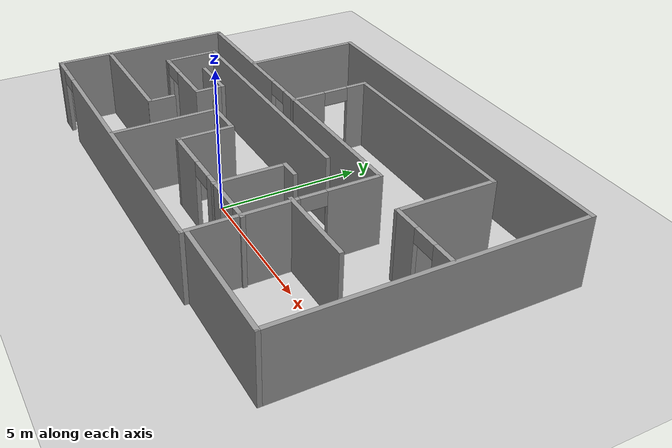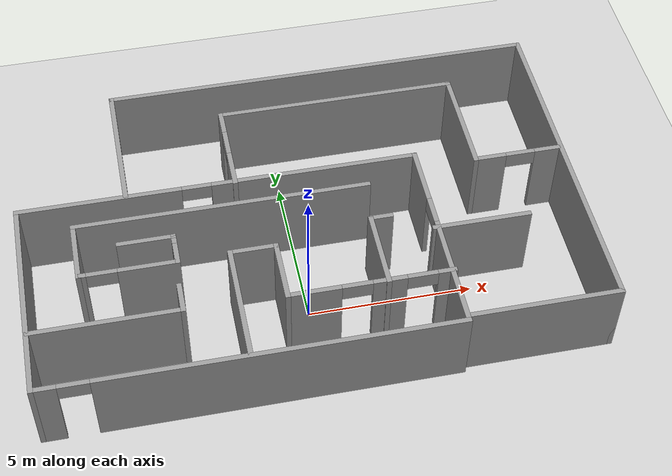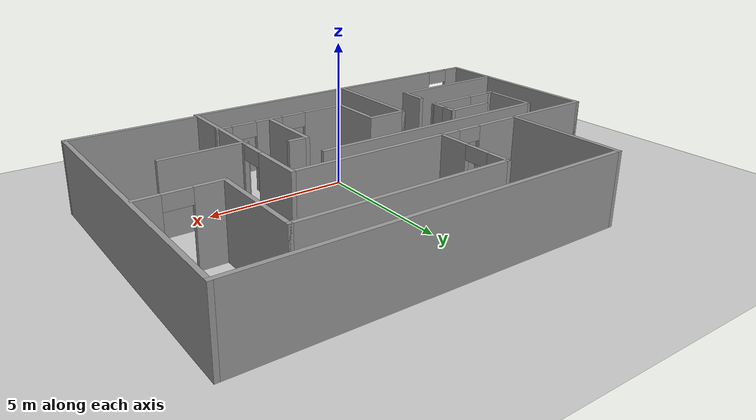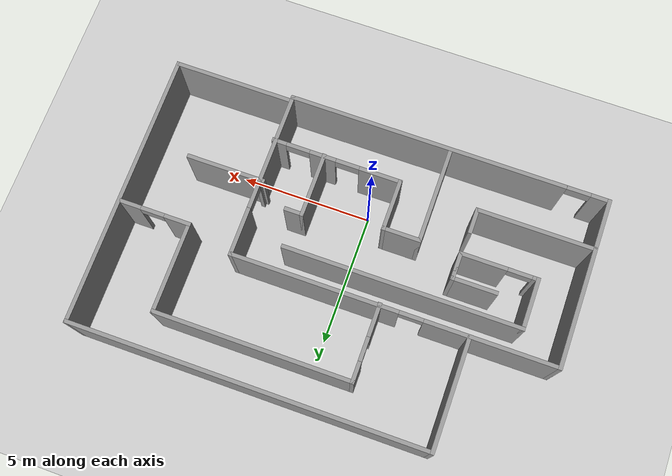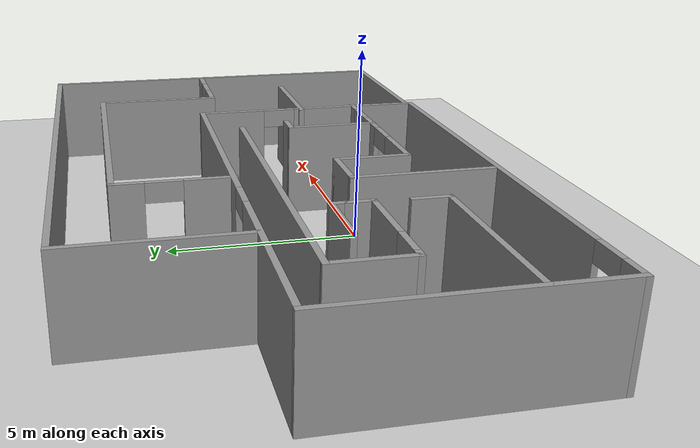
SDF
<sdf version="1.7">
 <world name="default">
  <light name="sun" type="directional">
   <pose>0 0 10 0 -0 0</pose>
   <diffuse>0.8 0.8 0.8 1</diffuse>
   <specular>0.2 0.2 0.2 1</specular>
   <attenuation>
    <range>1000</range>
    <constant>0.9</constant>
    <linear>0.01</linear>
    <quadratic>0.001</quadratic>
   </attenuation>
   <direction>-0.5 0.1 -0.9</direction>
   <spot><inner_angle>0</inner_angle><outer_angle>0</outer_angle><falloff>0</falloff></spot>
  </light>
  <model name="ground_plane">
   <static>1</static>
   <link name="link">
    <collision name="collision">
     <geometry><plane><normal>0 0 1</normal><size>100 100</size></plane></geometry>
     <surface><friction><ode><mu>100</mu><mu2>50</mu2></ode></friction></surface>
    </collision>
    <visual name="visual">
     <cast_shadows>0</cast_shadows>
     <geometry><plane><normal>0 0 1</normal><size>100 100</size></plane></geometry>
     <material>
      <script><uri>file://media/materials/scripts/gazebo.material</uri><name>Gazebo/Grey</name></script>
     </material>
    </visual>
   </link>
  </model>
  <gravity>0 0 -9.8</gravity>
  <magnetic_field>6e-06 2.3e-05 -4.2e-05</magnetic_field>
  <atmosphere type="adiabatic"/>
  <physics type="ode">
   <max_step_size>0.001</max_step_size>
   <real_time_factor>1</real_time_factor>
   <real_time_update_rate>1000</real_time_update_rate>
  </physics>
  <scene><ambient>0.4 0.4 0.4 1</ambient><background>0.7 0.7 0.7 1</background><shadows>1</shadows></scene>
  <audio><device>default</device></audio>
  <spherical_coordinates>
   <surface_model>EARTH_WGS84</surface_model>
   <latitude_deg>0</latitude_deg>
   <longitude_deg>0</longitude_deg>
   <elevation>0</elevation>
   <heading_deg>0</heading_deg>
  </spherical_coordinates>
  <model name="BigRoom">
   <pose>0.184858 2.40552 0 0 -0 0</pose>
   <link name="Wall_0">
    <collision name="Wall_0_Collision">
     <geometry><box><size>6.5 0.15 2.5</size></box></geometry>
     <pose>0 0 1.25 0 -0 0</pose>
    </collision>
    <visual name="Wall_0_Visual">
     <pose>0 0 1.25 0 -0 0</pose>
     <geometry><box><size>6.5 0.15 2.5</size></box></geometry>
     <material>
      <script><uri>file://media/materials/scripts/gazebo.material</uri><name>Gazebo/Grey</name></script>
      <ambient>1 1 1 1</ambient>
     </material>
     <meta><layer>0</layer></meta>
    </visual>
    <pose>-8.29782 -2.07571 0 0 -0 1.5708</pose>
   </link>
   <link name="Wall_1">
    <pose>-2.24782 1.09929 0 0 -0 0</pose>
    <visual name="Wall_1_Visual_0">
     <pose>-3.62567 0 1.25 0 -0 0</pose>
     <geometry><box><size>4.99865 0.15 2.5</size></box></geometry>
     <material>
      <script><uri>file://media/materials/scripts/gazebo.material</uri><name>Gazebo/Grey</name></script>
      <ambient>1 1 1 1</ambient>
     </material>
     <meta><layer>0</layer></meta>
    </visual>
    <collision name="Wall_1_Collision_0">
     <geometry><box><size>4.99865 0.15 2.5</size></box></geometry>
     <pose>-3.62567 0 1.25 0 -0 0</pose>
    </collision>
    <visual name="Wall_1_Visual_1">
     <pose>2.94933 0 1.25 0 -0 0</pose>
     <geometry><box><size>6.35135 0.15 2.5</size></box></geometry>
     <material>
      <script><uri>file://media/materials/scripts/gazebo.material</uri><name>Gazebo/Grey</name></script>
      <ambient>1 1 1 1</ambient>
     </material>
     <meta><layer>0</layer></meta>
    </visual>
    <collision name="Wall_1_Collision_1">
     <geometry><box><size>6.35135 0.15 2.5</size></box></geometry>
     <pose>2.94933 0 1.25 0 -0 0</pose>
    </collision>
    <visual name="Wall_1_Visual_2">
     <pose>-0.676348 0 2.25 0 -0 0</pose>
     <geometry><box><size>0.9 0.15 0.5</size></box></geometry>
     <material>
      <script><uri>file://media/materials/scripts/gazebo.material</uri><name>Gazebo/Grey</name></script>
      <ambient>1 1 1 1</ambient>
     </material>
     <meta><layer>0</layer></meta>
    </visual>
    <collision name="Wall_1_Collision_2">
     <geometry><box><size>0.9 0.15 0.5</size></box></geometry>
     <pose>-0.676348 0 2.25 0 -0 0</pose>
    </collision>
   </link>
   <link name="Wall_11">
    <pose>-5.28034 -1.63026 0 0 -0 3.14159</pose>
    <visual name="Wall_11_Visual_0">
     <pose>-0.594371 0 1.25 0 -0 0</pose>
     <geometry><box><size>1.81126 0.15 2.5</size></box></geometry>
     <material>
      <script><uri>file://media/materials/scripts/gazebo.material</uri><name>Gazebo/Grey</name></script>
      <ambient>1 1 1 1</ambient>
     </material>
     <meta><layer>0</layer></meta>
    </visual>
    <collision name="Wall_11_Collision_0">
     <geometry><box><size>1.81126 0.15 2.5</size></box></geometry>
     <pose>-0.594371 0 1.25 0 -0 0</pose>
    </collision>
    <visual name="Wall_11_Visual_1">
     <pose>1.35563 0 1.25 0 -0 0</pose>
     <geometry><box><size>0.288742 0.15 2.5</size></box></geometry>
     <material>
      <script><uri>file://media/materials/scripts/gazebo.material</uri><name>Gazebo/Grey</name></script>
      <ambient>1 1 1 1</ambient>
     </material>
     <meta><layer>0</layer></meta>
    </visual>
    <collision name="Wall_11_Collision_1">
     <geometry><box><size>0.288742 0.15 2.5</size></box></geometry>
     <pose>1.35563 0 1.25 0 -0 0</pose>
    </collision>
    <visual name="Wall_11_Visual_2">
     <pose>0.761258 0 2.25 0 -0 0</pose>
     <geometry><box><size>0.9 0.15 0.5</size></box></geometry>
     <material>
      <script><uri>file://media/materials/scripts/gazebo.material</uri><name>Gazebo/Grey</name></script>
      <ambient>1 1 1 1</ambient>
     </material>
     <meta><layer>0</layer></meta>
    </visual>
    <collision name="Wall_11_Collision_2">
     <geometry><box><size>0.9 0.15 0.5</size></box></geometry>
     <pose>0.761258 0 2.25 0 -0 0</pose>
    </collision>
   </link>
   <link name="Wall_12">
    <collision name="Wall_12_Collision">
     <geometry><box><size>2 0.15 2.5</size></box></geometry>
     <pose>0 0 1.25 0 -0 0</pose>
    </collision>
    <visual name="Wall_12_Visual">
     <pose>0 0 1.25 0 -0 0</pose>
     <geometry><box><size>2 0.15 2.5</size></box></geometry>
     <material>
      <script><uri>file://media/materials/scripts/gazebo.material</uri><name>Gazebo/Grey</name></script>
      <ambient>1 1 1 1</ambient>
     </material>
     <meta><layer>0</layer></meta>
    </visual>
    <pose>-6.70534 -0.705262 0 0 -0 1.5708</pose>
   </link>
   <link name="Wall_13">
    <collision name="Wall_13_Collision">
     <geometry><box><size>9 0.15 2.5</size></box></geometry>
     <pose>0 0 1.25 0 -0 0</pose>
    </collision>
    <visual name="Wall_13_Visual">
     <pose>0 0 1.25 0 -0 0</pose>
     <geometry><box><size>9 0.15 2.5</size></box></geometry>
     <material>
      <script><uri>file://media/materials/scripts/gazebo.material</uri><name>Gazebo/Grey</name></script>
      <ambient>1 1 1 1</ambient>
     </material>
     <meta><layer>0</layer></meta>
    </visual>
    <pose>-2.28034 0.219738 0 0 -0 0</pose>
   </link>
   <link name="Wall_15">
    <collision name="Wall_15_Collision">
     <geometry><box><size>0.75 0.15 2.5</size></box></geometry>
     <pose>0 0 1.25 0 -0 0</pose>
    </collision>
    <visual name="Wall_15_Visual">
     <pose>0 0 1.25 0 -0 0</pose>
     <geometry><box><size>0.75 0.15 2.5</size></box></geometry>
     <material>
      <script><uri>file://media/materials/scripts/gazebo.material</uri><name>Gazebo/Grey</name></script>
      <ambient>1 1 1 1</ambient>
     </material>
     <meta><layer>0</layer></meta>
    </visual>
    <pose>-3.85534 -1.33026 0 0 -0 1.5708</pose>
   </link>
   <link name="Wall_16">
    <collision name="Wall_16_Collision">
     <geometry><box><size>0.5 0.15 2.5</size></box></geometry>
     <pose>0 0 1.25 0 -0 0</pose>
    </collision>
    <visual name="Wall_16_Visual">
     <pose>0 0 1.25 0 -0 0</pose>
     <geometry><box><size>0.5 0.15 2.5</size></box></geometry>
     <material>
      <script><uri>file://media/materials/scripts/gazebo.material</uri><name>Gazebo/Grey</name></script>
      <ambient>1 1 1 1</ambient>
     </material>
     <meta><layer>0</layer></meta>
    </visual>
    <pose>-3.85534 -0.855262 0 0 -0 1.5708</pose>
   </link>
   <link name="Wall_17">
    <collision name="Wall_17_Collision">
     <geometry><box><size>1.75 0.15 2.5</size></box></geometry>
     <pose>0 0 1.25 0 -0 0</pose>
    </collision>
    <visual name="Wall_17_Visual">
     <pose>0 0 1.25 0 -0 0</pose>
     <geometry><box><size>1.75 0.15 2.5</size></box></geometry>
     <material>
      <script><uri>file://media/materials/scripts/gazebo.material</uri><name>Gazebo/Grey</name></script>
      <ambient>1 1 1 1</ambient>
     </material>
     <meta><layer>0</layer></meta>
    </visual>
    <pose>-4.65534 -0.680262 0 0 -0 3.14159</pose>
   </link>
   <link name="Wall_19">
    <collision name="Wall_19_Collision">
     <geometry><box><size>1.5 0.15 2.5</size></box></geometry>
     <pose>0 0 1.25 0 -0 0</pose>
    </collision>
    <visual name="Wall_19_Visual">
     <pose>0 0 1.25 0 -0 0</pose>
     <geometry><box><size>1.5 0.15 2.5</size></box></geometry>
     <material>
      <script><uri>file://media/materials/scripts/gazebo.material</uri><name>Gazebo/Grey</name></script>
      <ambient>1 1 1 1</ambient>
     </material>
     <meta><layer>0</layer></meta>
    </visual>
    <pose>-1.65871 -1.59824 0 0 -0 0</pose>
   </link>
   <link name="Wall_2">
    <pose>3.80218 -2.07571 0 0 -0 -1.5708</pose>
    <visual name="Wall_2_Visual_0">
     <pose>-2.3061 0 1.25 0 -0 0</pose>
     <geometry><box><size>1.88781 0.15 2.5</size></box></geometry>
     <material>
      <script><uri>file://media/materials/scripts/gazebo.material</uri><name>Gazebo/Grey</name></script>
      <ambient>1 1 1 1</ambient>
     </material>
     <meta><layer>0</layer></meta>
    </visual>
    <collision name="Wall_2_Collision_0">
     <geometry><box><size>1.88781 0.15 2.5</size></box></geometry>
     <pose>-2.3061 0 1.25 0 -0 0</pose>
    </collision>
    <visual name="Wall_2_Visual_1">
     <pose>1.3939 0 1.25 0 -0 0</pose>
     <geometry><box><size>3.71219 0.15 2.5</size></box></geometry>
     <material>
      <script><uri>file://media/materials/scripts/gazebo.material</uri><name>Gazebo/Grey</name></script>
      <ambient>1 1 1 1</ambient>
     </material>
     <meta><layer>0</layer></meta>
    </visual>
    <collision name="Wall_2_Collision_1">
     <geometry><box><size>3.71219 0.15 2.5</size></box></geometry>
     <pose>1.3939 0 1.25 0 -0 0</pose>
    </collision>
    <visual name="Wall_2_Visual_2">
     <pose>-0.912193 0 2.25 0 -0 0</pose>
     <geometry><box><size>0.9 0.15 0.5</size></box></geometry>
     <material>
      <script><uri>file://media/materials/scripts/gazebo.material</uri><name>Gazebo/Grey</name></script>
      <ambient>1 1 1 1</ambient>
     </material>
     <meta><layer>0</layer></meta>
    </visual>
    <collision name="Wall_2_Collision_2">
     <geometry><box><size>0.9 0.15 0.5</size></box></geometry>
     <pose>-0.912193 0 2.25 0 -0 0</pose>
    </collision>
   </link>
   <link name="Wall_20">
    <collision name="Wall_20_Collision">
     <geometry><box><size>2 0.15 2.5</size></box></geometry>
     <pose>0 0 1.25 0 -0 0</pose>
    </collision>
    <visual name="Wall_20_Visual">
     <pose>0 0 1.25 0 -0 0</pose>
     <geometry><box><size>2 0.15 2.5</size></box></geometry>
     <material>
      <script><uri>file://media/materials/scripts/gazebo.material</uri><name>Gazebo/Grey</name></script>
      <ambient>1 1 1 1</ambient>
     </material>
     <meta><layer>0</layer></meta>
    </visual>
    <pose>-0.983707 -2.52324 0 0 -0 -1.5708</pose>
   </link>
   <link name="Wall_21">
    <pose>1.44129 -3.44823 0 0 -0 0</pose>
    <visual name="Wall_21_Visual_0">
     <pose>-1.68345 0 1.25 0 -0 0</pose>
     <geometry><box><size>1.63309 0.15 2.5</size></box></geometry>
     <material>
      <script><uri>file://media/materials/scripts/gazebo.material</uri><name>Gazebo/Grey</name></script>
      <ambient>1 1 1 1</ambient>
     </material>
     <meta><layer>0</layer></meta>
    </visual>
    <collision name="Wall_21_Collision_0">
     <geometry><box><size>1.63309 0.15 2.5</size></box></geometry>
     <pose>-1.68345 0 1.25 0 -0 0</pose>
    </collision>
    <visual name="Wall_21_Visual_1">
     <pose>0.5363 0 1.25 0 -0 0</pose>
     <geometry><box><size>1.00642 0.15 2.5</size></box></geometry>
     <material>
      <script><uri>file://media/materials/scripts/gazebo.material</uri><name>Gazebo/Grey</name></script>
      <ambient>1 1 1 1</ambient>
     </material>
     <meta><layer>0</layer></meta>
    </visual>
    <collision name="Wall_21_Collision_1">
     <geometry><box><size>1.00642 0.15 2.5</size></box></geometry>
     <pose>0.5363 0 1.25 0 -0 0</pose>
    </collision>
    <visual name="Wall_21_Visual_2">
     <pose>2.21975 0 1.25 0 -0 0</pose>
     <geometry><box><size>0.560491 0.15 2.5</size></box></geometry>
     <material>
      <script><uri>file://media/materials/scripts/gazebo.material</uri><name>Gazebo/Grey</name></script>
      <ambient>1 1 1 1</ambient>
     </material>
     <meta><layer>0</layer></meta>
    </visual>
    <collision name="Wall_21_Collision_2">
     <geometry><box><size>0.560491 0.15 2.5</size></box></geometry>
     <pose>2.21975 0 1.25 0 -0 0</pose>
    </collision>
    <visual name="Wall_21_Visual_3">
     <pose>-0.416908 0 2.25 0 -0 0</pose>
     <geometry><box><size>0.9 0.15 0.5</size></box></geometry>
     <material>
      <script><uri>file://media/materials/scripts/gazebo.material</uri><name>Gazebo/Grey</name></script>
      <ambient>1 1 1 1</ambient>
     </material>
     <meta><layer>0</layer></meta>
    </visual>
    <collision name="Wall_21_Collision_3">
     <geometry><box><size>0.9 0.15 0.5</size></box></geometry>
     <pose>-0.416908 0 2.25 0 -0 0</pose>
    </collision>
    <visual name="Wall_21_Visual_4">
     <pose>1.48951 0 2.25 0 -0 0</pose>
     <geometry><box><size>0.9 0.15 0.5</size></box></geometry>
     <material>
      <script><uri>file://media/materials/scripts/gazebo.material</uri><name>Gazebo/Grey</name></script>
      <ambient>1 1 1 1</ambient>
     </material>
     <meta><layer>0</layer></meta>
    </visual>
    <collision name="Wall_21_Collision_4">
     <geometry><box><size>0.9 0.15 0.5</size></box></geometry>
     <pose>1.48951 0 2.25 0 -0 0</pose>
    </collision>
   </link>
   <link name="Wall_23">
    <collision name="Wall_23_Collision">
     <geometry><box><size>2.5 0.15 2.5</size></box></geometry>
     <pose>0 0 1.25 0 -0 0</pose>
    </collision>
    <visual name="Wall_23_Visual">
     <pose>0 0 1.25 0 -0 0</pose>
     <geometry><box><size>2.5 0.15 2.5</size></box></geometry>
     <material>
      <script><uri>file://media/materials/scripts/gazebo.material</uri><name>Gazebo/Grey</name></script>
      <ambient>1 1 1 1</ambient>
     </material>
     <meta><layer>0</layer></meta>
    </visual>
    <pose>1.93387 -2.29172 0 0 -0 1.5708</pose>
   </link>
   <link name="Wall_27">
    <collision name="Wall_27_Collision">
     <geometry><box><size>0.75 0.15 2.5</size></box></geometry>
     <pose>0 0 1.25 0 -0 0</pose>
    </collision>
    <visual name="Wall_27_Visual">
     <pose>0 0 1.25 0 -0 0</pose>
     <geometry><box><size>0.75 0.15 2.5</size></box></geometry>
     <material>
      <script><uri>file://media/materials/scripts/gazebo.material</uri><name>Gazebo/Grey</name></script>
      <ambient>1 1 1 1</ambient>
     </material>
     <meta><layer>0</layer></meta>
    </visual>
    <pose>2.23387 -1.11672 0 0 -0 0</pose>
   </link>
   <link name="Wall_29">
    <collision name="Wall_29_Collision">
     <geometry><box><size>4.25 0.15 2.5</size></box></geometry>
     <pose>0 0 1.25 0 -0 0</pose>
    </collision>
    <visual name="Wall_29_Visual">
     <pose>0 0 1.25 0 -0 0</pose>
     <geometry><box><size>4.25 0.15 2.5</size></box></geometry>
     <material>
      <script><uri>file://media/materials/scripts/gazebo.material</uri><name>Gazebo/Grey</name></script>
      <ambient>1 1 1 1</ambient>
     </material>
     <meta><layer>0</layer></meta>
    </visual>
    <pose>-5.05218 3.20071 0 0 -0 1.5708</pose>
   </link>
   <link name="Wall_3">
    <pose>-2.24782 -5.2507 0 0 -0 3.14159</pose>
    <visual name="Wall_3_Visual_0">
     <pose>-0.830927 0 1.25 0 -0 0</pose>
     <geometry><box><size>10.5881 0.15 2.5</size></box></geometry>
     <material>
      <script><uri>file://media/materials/scripts/gazebo.material</uri><name>Gazebo/Grey</name></script>
      <ambient>1 1 1 1</ambient>
     </material>
     <meta><layer>0</layer></meta>
    </visual>
    <collision name="Wall_3_Collision_0">
     <geometry><box><size>10.5881 0.15 2.5</size></box></geometry>
     <pose>-0.830927 0 1.25 0 -0 0</pose>
    </collision>
    <visual name="Wall_3_Visual_1">
     <pose>5.74407 0 1.25 0 -0 0</pose>
     <geometry><box><size>0.761854 0.15 2.5</size></box></geometry>
     <material>
      <script><uri>file://media/materials/scripts/gazebo.material</uri><name>Gazebo/Grey</name></script>
      <ambient>1 1 1 1</ambient>
     </material>
     <meta><layer>0</layer></meta>
    </visual>
    <collision name="Wall_3_Collision_1">
     <geometry><box><size>0.761854 0.15 2.5</size></box></geometry>
     <pose>5.74407 0 1.25 0 -0 0</pose>
    </collision>
    <visual name="Wall_3_Visual_2">
     <pose>4.91315 0 2.25 0 -0 0</pose>
     <geometry><box><size>0.9 0.15 0.5</size></box></geometry>
     <material>
      <script><uri>file://media/materials/scripts/gazebo.material</uri><name>Gazebo/Grey</name></script>
      <ambient>1 1 1 1</ambient>
     </material>
     <meta><layer>0</layer></meta>
    </visual>
    <collision name="Wall_3_Collision_2">
     <geometry><box><size>0.9 0.15 0.5</size></box></geometry>
     <pose>4.91315 0 2.25 0 -0 0</pose>
    </collision>
   </link>
   <link name="Wall_30">
    <collision name="Wall_30_Collision">
     <geometry><box><size>13.5 0.15 2.5</size></box></geometry>
     <pose>0 0 1.25 0 -0 0</pose>
    </collision>
    <visual name="Wall_30_Visual">
     <pose>0 0 1.25 0 -0 0</pose>
     <geometry><box><size>13.5 0.15 2.5</size></box></geometry>
     <material>
      <script><uri>file://media/materials/scripts/gazebo.material</uri><name>Gazebo/Grey</name></script>
      <ambient>1 1 1 1</ambient>
     </material>
     <meta><layer>0</layer></meta>
    </visual>
    <pose>1.62282 5.2507 0 0 -0 0</pose>
   </link>
   <link name="Wall_31">
    <collision name="Wall_31_Collision">
     <geometry><box><size>10.5 0.15 2.5</size></box></geometry>
     <pose>0 0 1.25 0 -0 0</pose>
    </collision>
    <visual name="Wall_31_Visual">
     <pose>0 0 1.25 0 -0 0</pose>
     <geometry><box><size>10.5 0.15 2.5</size></box></geometry>
     <material>
      <script><uri>file://media/materials/scripts/gazebo.material</uri><name>Gazebo/Grey</name></script>
      <ambient>1 1 1 1</ambient>
     </material>
     <meta><layer>0</layer></meta>
    </visual>
    <pose>8.29782 0.075705 0 0 -0 -1.5708</pose>
   </link>
   <link name="Wall_32">
    <collision name="Wall_32_Collision">
     <geometry><box><size>4.5 0.15 2.5</size></box></geometry>
     <pose>0 0 1.25 0 -0 0</pose>
    </collision>
    <visual name="Wall_32_Visual">
     <pose>0 0 1.25 0 -0 0</pose>
     <geometry><box><size>4.5 0.15 2.5</size></box></geometry>
     <material>
      <script><uri>file://media/materials/scripts/gazebo.material</uri><name>Gazebo/Grey</name></script>
      <ambient>1 1 1 1</ambient>
     </material>
     <meta><layer>0</layer></meta>
    </visual>
    <pose>6.12282 -5.09929 0 0 -0 3.14159</pose>
   </link>
   <link name="Wall_34">
    <pose>-1.75376 2.4959 0 0 -0 1.5708</pose>
    <visual name="Wall_34_Visual_0">
     <pose>-0.862894 0 1.25 0 -0 0</pose>
     <geometry><box><size>1.27421 0.15 2.5</size></box></geometry>
     <material>
      <script><uri>file://media/materials/scripts/gazebo.material</uri><name>Gazebo/Grey</name></script>
      <ambient>1 1 1 1</ambient>
     </material>
     <meta><layer>0</layer></meta>
    </visual>
    <collision name="Wall_34_Collision_0">
     <geometry><box><size>1.27421 0.15 2.5</size></box></geometry>
     <pose>-0.862894 0 1.25 0 -0 0</pose>
    </collision>
    <visual name="Wall_34_Visual_1">
     <pose>1.08711 0 1.25 0 -0 0</pose>
     <geometry><box><size>0.825788 0.15 2.5</size></box></geometry>
     <material>
      <script><uri>file://media/materials/scripts/gazebo.material</uri><name>Gazebo/Grey</name></script>
      <ambient>1 1 1 1</ambient>
     </material>
     <meta><layer>0</layer></meta>
    </visual>
    <collision name="Wall_34_Collision_1">
     <geometry><box><size>0.825788 0.15 2.5</size></box></geometry>
     <pose>1.08711 0 1.25 0 -0 0</pose>
    </collision>
    <visual name="Wall_34_Visual_2">
     <pose>0.224212 0 2.25 0 -0 0</pose>
     <geometry><box><size>0.9 0.15 0.5</size></box></geometry>
     <material>
      <script><uri>file://media/materials/scripts/gazebo.material</uri><name>Gazebo/Grey</name></script>
      <ambient>1 1 1 1</ambient>
     </material>
     <meta><layer>0</layer></meta>
    </visual>
    <collision name="Wall_34_Collision_2">
     <geometry><box><size>0.9 0.15 0.5</size></box></geometry>
     <pose>0.224212 0 2.25 0 -0 0</pose>
    </collision>
   </link>
   <link name="Wall_35">
    <collision name="Wall_35_Collision">
     <geometry><box><size>7.5 0.15 2.5</size></box></geometry>
     <pose>0 0 1.25 0 -0 0</pose>
    </collision>
    <visual name="Wall_35_Visual">
     <pose>0 0 1.25 0 -0 0</pose>
     <geometry><box><size>7.5 0.15 2.5</size></box></geometry>
     <material>
      <script><uri>file://media/materials/scripts/gazebo.material</uri><name>Gazebo/Grey</name></script>
      <ambient>1 1 1 1</ambient>
     </material>
     <meta><layer>0</layer></meta>
    </visual>
    <pose>1.92124 3.9209 0 0 -0 0</pose>
   </link>
   <link name="Wall_36">
    <collision name="Wall_36_Collision">
     <geometry><box><size>3.5 0.15 2.5</size></box></geometry>
     <pose>0 0 1.25 0 -0 0</pose>
    </collision>
    <visual name="Wall_36_Visual">
     <pose>0 0 1.25 0 -0 0</pose>
     <geometry><box><size>3.5 0.15 2.5</size></box></geometry>
     <material>
      <script><uri>file://media/materials/scripts/gazebo.material</uri><name>Gazebo/Grey</name></script>
      <ambient>1 1 1 1</ambient>
     </material>
     <meta><layer>0</layer></meta>
    </visual>
    <pose>5.59624 2.2459 0 0 -0 -1.5708</pose>
   </link>
   <link name="Wall_37">
    <pose>6.89624 0.570904 0 0 -0 0</pose>
    <visual name="Wall_37_Visual_0">
     <pose>-0.861767 0 1.25 0 -0 0</pose>
     <geometry><box><size>1.02646 0.15 2.5</size></box></geometry>
     <material>
      <script><uri>file://media/materials/scripts/gazebo.material</uri><name>Gazebo/Grey</name></script>
      <ambient>1 1 1 1</ambient>
     </material>
     <meta><layer>0</layer></meta>
    </visual>
    <collision name="Wall_37_Collision_0">
     <geometry><box><size>1.02646 0.15 2.5</size></box></geometry>
     <pose>-0.861767 0 1.25 0 -0 0</pose>
    </collision>
    <visual name="Wall_37_Visual_1">
     <pose>0.963233 0 1.25 0 -0 0</pose>
     <geometry><box><size>0.823535 0.15 2.5</size></box></geometry>
     <material>
      <script><uri>file://media/materials/scripts/gazebo.material</uri><name>Gazebo/Grey</name></script>
      <ambient>1 1 1 1</ambient>
     </material>
     <meta><layer>0</layer></meta>
    </visual>
    <collision name="Wall_37_Collision_1">
     <geometry><box><size>0.823535 0.15 2.5</size></box></geometry>
     <pose>0.963233 0 1.25 0 -0 0</pose>
    </collision>
    <visual name="Wall_37_Visual_2">
     <pose>0.101465 0 2.25 0 -0 0</pose>
     <geometry><box><size>0.9 0.15 0.5</size></box></geometry>
     <material>
      <script><uri>file://media/materials/scripts/gazebo.material</uri><name>Gazebo/Grey</name></script>
      <ambient>1 1 1 1</ambient>
     </material>
     <meta><layer>0</layer></meta>
    </visual>
    <collision name="Wall_37_Collision_2">
     <geometry><box><size>0.9 0.15 0.5</size></box></geometry>
     <pose>0.101465 0 2.25 0 -0 0</pose>
    </collision>
   </link>
   <link name="Wall_39">
    <collision name="Wall_39_Collision">
     <geometry><box><size>3 0.15 2.5</size></box></geometry>
     <pose>0 0 1.25 0 -0 0</pose>
    </collision>
    <visual name="Wall_39_Visual">
     <pose>0 0 1.25 0 -0 0</pose>
     <geometry><box><size>3 0.15 2.5</size></box></geometry>
     <material>
      <script><uri>file://media/materials/scripts/gazebo.material</uri><name>Gazebo/Grey</name></script>
      <ambient>1 1 1 1</ambient>
     </material>
     <meta><layer>0</layer></meta>
    </visual>
    <pose>5.12428 -1.82852 0 0 -0 0</pose>
   </link>
   <link name="Wall_5">
    <collision name="Wall_5_Collision">
     <geometry><box><size>4.46502 0.15 2.5</size></box></geometry>
     <pose>0 0 1.25 0 -0 0</pose>
    </collision>
    <visual name="Wall_5_Visual">
     <pose>0 0 1.25 0 -0 0</pose>
     <geometry><box><size>4.46502 0.15 2.5</size></box></geometry>
     <material>
      <script><uri>file://media/materials/scripts/gazebo.material</uri><name>Gazebo/Grey</name></script>
      <ambient>1 1 1 1</ambient>
     </material>
     <meta><layer>0</layer></meta>
    </visual>
    <pose>-6.10533 -3.36178 0 0 -0 0</pose>
   </link>
   <link name="Wall_6">
    <collision name="Wall_6_Collision">
     <geometry><box><size>1 0.15 2.5</size></box></geometry>
     <pose>0 0 1.25 0 -0 0</pose>
    </collision>
    <visual name="Wall_6_Visual">
     <pose>0 0 1.25 0 -0 0</pose>
     <geometry><box><size>1 0.15 2.5</size></box></geometry>
     <material>
      <script><uri>file://media/materials/scripts/gazebo.material</uri><name>Gazebo/Grey</name></script>
      <ambient>1 1 1 1</ambient>
     </material>
     <meta><layer>0</layer></meta>
    </visual>
    <pose>-3.93033 -2.93678 0 0 -0 1.5708</pose>
   </link>
   <link name="Wall_9">
    <collision name="Wall_9_Collision">
     <geometry><box><size>3.75 0.15 2.5</size></box></geometry>
     <pose>0 0 1.25 0 -0 0</pose>
    </collision>
    <visual name="Wall_9_Visual">
     <pose>0 0 1.25 0 -0 0</pose>
     <geometry><box><size>3.75 0.15 2.5</size></box></geometry>
     <material>
      <script><uri>file://media/materials/scripts/gazebo.material</uri><name>Gazebo/Grey</name></script>
      <ambient>1 1 1 1</ambient>
     </material>
     <meta><layer>0</layer></meta>
    </visual>
    <pose>-2.33371 -3.39824 0 0 -0 1.5708</pose>
   </link>
   <static>1</static>
  </model>
 </world>
</sdf>
